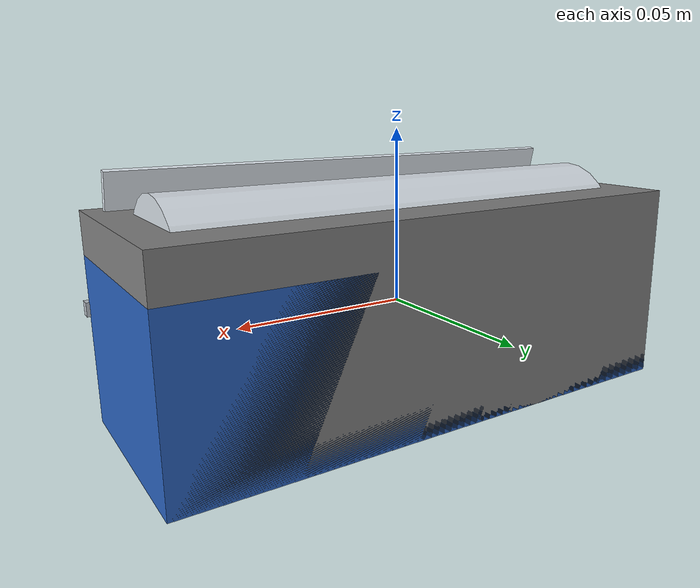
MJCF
<mujoco model="vla82_vla82_045">
  <compiler angle="radian"/>
  <asset>
    <texture name="source_texture" type="2d" file="source_texture.png"/>
    <material name="source_material" texture="source_texture" rgba="1 1 1 1"/>
  </asset>
  <default>
    <default class="visual"><geom contype="0" conaffinity="0" group="1" mass="0"/></default>
    <default class="collision"><geom contype="1" conaffinity="1" group="0" density="300" friction="0.65 0.006 0.0002" solref="0.02 1" solimp="0.9 0.95 0.001"/></default>
    <default class="region"><geom contype="0" conaffinity="0" group="1" rgba="0 1 0 0" mass="0"/></default>
  </default>
  <worldbody><body><body name="object">
    <geom name="foil_box" class="visual" type="box" pos="0 0 -0.006" size="0.080 0.030 0.024" rgba="0.16 0.38 0.73 1"/>
    <geom name="foil_roll" class="visual" type="cylinder" pos="0 0 0.017" size="0.020 0.070" quat="0.7071068 0 0.7071068 0" rgba="0.83 0.86 0.89 1"/>
    <geom name="foil_core" class="visual" type="cylinder" pos="0 0 0.017" size="0.007 0.072" quat="0.7071068 0 0.7071068 0" rgba="0.50 0.32 0.18 1"/>
    <geom name="foil_sheet" class="visual" type="box" pos="0 -0.026 0.023" size="0.075 0.001 0.018" euler="-0.22 0 0" rgba="0.88 0.91 0.94 0.92"/>
    <geom name="serrated_cutter" class="visual" type="box" pos="0 -0.031 0.003" size="0.081 0.0015 0.002" rgba="0.72 0.75 0.78 1"/>
    <geom name="legacy_visual_mass_carrier" class="visual" type="box" size="0.080000 0.030000 0.030000" mass="0.576000000" rgba="0 0 0 0"/>
    <geom name="collision" class="collision" type="box" size="0.080000 0.030000 0.030000"/>
    <geom name="reg_bbox" class="region" type="box" pos="0 0 0" size="0.080000 0.030000 0.030000"/>
  </body></body></worldbody>
  <actuator/>
</mujoco>
